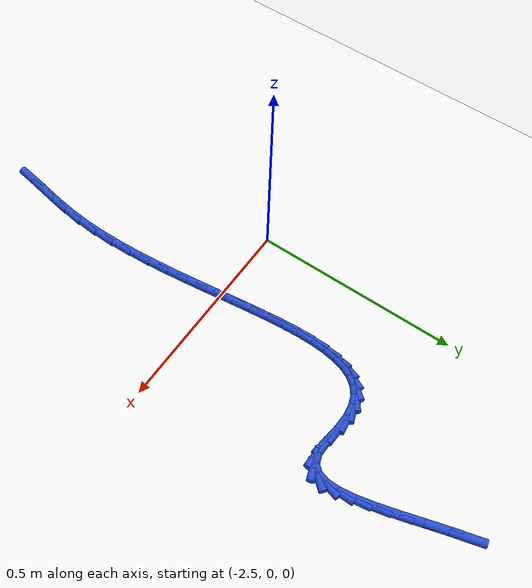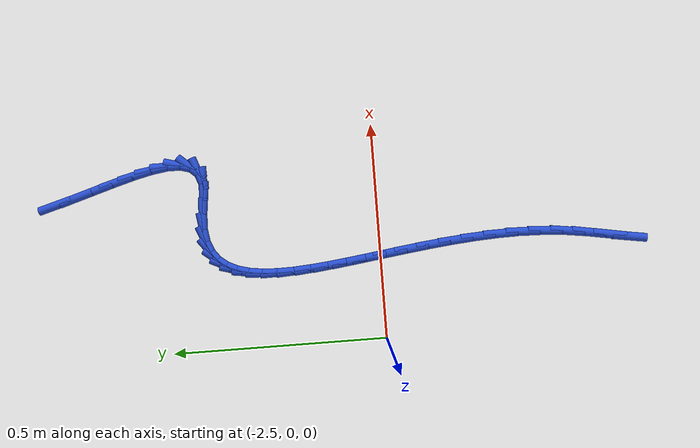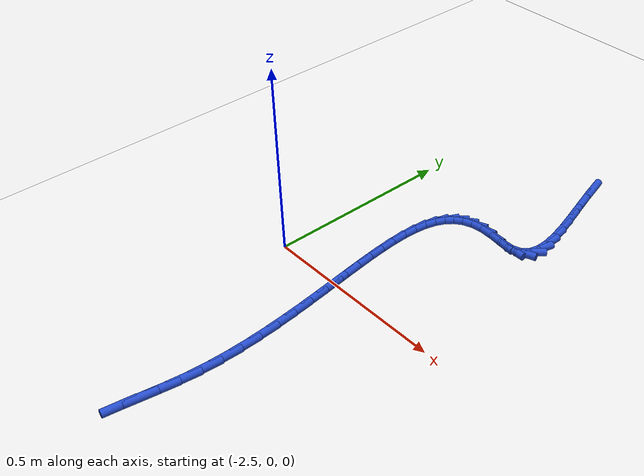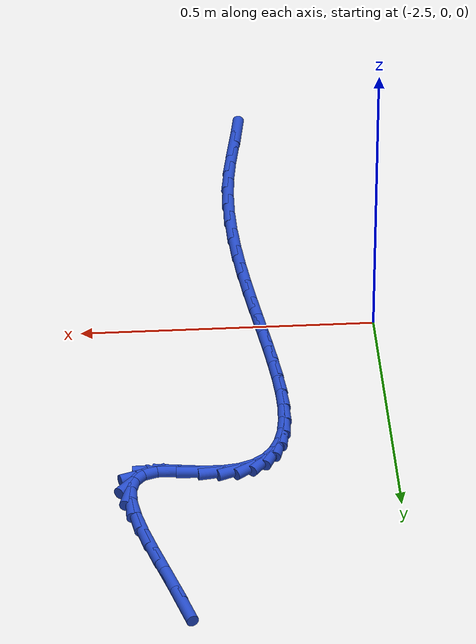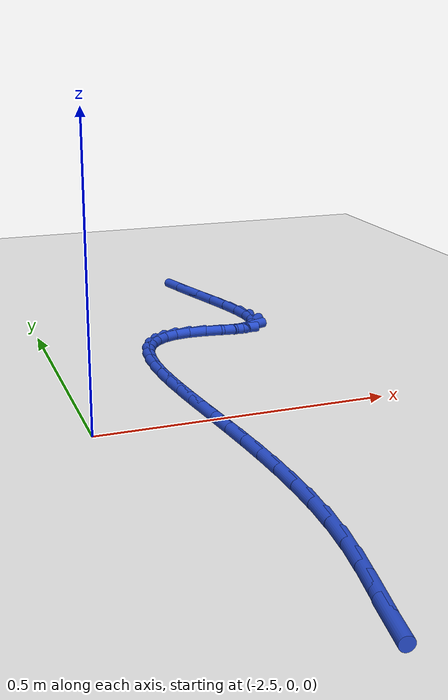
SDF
<sdf version="1.6">
 <world name="default">
  <model name="ground_plane">
   <static>1</static>
   <link name="link">
    <collision name="collision">
     <geometry><plane><normal>0 0 1</normal><size>100 100</size></plane></geometry>
     <surface><friction><ode><mu>100</mu><mu2>50</mu2></ode></friction></surface>
    </collision>
    <visual name="visual">
     <cast_shadows>0</cast_shadows>
     <geometry><plane><normal>0 0 1</normal><size>100 100</size></plane></geometry>
     <material>
      <script><uri>file://media/materials/scripts/gazebo.material</uri><name>Gazebo/WhiteGlow</name></script>
     </material>
    </visual>
   </link>
  </model>
  <model name="line">
   <link name="link_96">
    <pose>-2.1310948511905163 0.7471759445319182 0.01 0 1.57 -1.297716584570701</pose>
    <collision name="collision">
     <geometry><cylinder><radius>0.01</radius><length>0.08</length></cylinder></geometry>
    </collision>
    <visual name="visual">
     <material>
      <script><name>Gazebo/Blue</name><uri>file://media/materials/scripts/gazebo.material</uri></script>
     </material>
     <geometry><cylinder><radius>0.01</radius><length>0.08</length></cylinder></geometry>
    </visual>
   </link>
   <link name="link_97">
    <pose>-2.1171424516306065 0.6973595762409653 0.01 0 1.57 -1.280809711748356</pose>
    <collision name="collision">
     <geometry><cylinder><radius>0.01</radius><length>0.08</length></cylinder></geometry>
    </collision>
    <visual name="visual">
     <material>
      <script><name>Gazebo/Blue</name><uri>file://media/materials/scripts/gazebo.material</uri></script>
     </material>
     <geometry><cylinder><radius>0.01</radius><length>0.08</length></cylinder></geometry>
    </visual>
   </link>
   <link name="link_98">
    <pose>-2.1025384481944487 0.6484182523342042 0.01 0 1.57 -1.2810920917916413</pose>
    <collision name="collision">
     <geometry><cylinder><radius>0.01</radius><length>0.08</length></cylinder></geometry>
    </collision>
    <visual name="visual">
     <material>
      <script><name>Gazebo/Blue</name><uri>file://media/materials/scripts/gazebo.material</uri></script>
     </material>
     <geometry><cylinder><radius>0.01</radius><length>0.08</length></cylinder></geometry>
    </visual>
   </link>
   <link name="link_99">
    <pose>-2.0884894497342206 0.6012883086900848 0.01 0 1.57 -1.3007075484696438</pose>
    <collision name="collision">
     <geometry><cylinder><radius>0.01</radius><length>0.08</length></cylinder></geometry>
    </collision>
    <visual name="visual">
     <material>
      <script><name>Gazebo/Blue</name><uri>file://media/materials/scripts/gazebo.material</uri></script>
     </material>
     <geometry><cylinder><radius>0.01</radius><length>0.08</length></cylinder></geometry>
    </visual>
   </link>
   <link name="link_100">
    <pose>-2.0762020651021 0.5569060811870585 0.01 0 1.57 -1.3456947190603032</pose>
    <collision name="collision">
     <geometry><cylinder><radius>0.01</radius><length>0.08</length></cylinder></geometry>
    </collision>
    <visual name="visual">
     <material>
      <script><name>Gazebo/Blue</name><uri>file://media/materials/scripts/gazebo.material</uri></script>
     </material>
     <geometry><cylinder><radius>0.01</radius><length>0.08</length></cylinder></geometry>
    </visual>
   </link>
   <link name="link_101">
    <pose>-2.0668829031502653 0.5162079057035749 0.01 0 1.57 -1.4291611176297228</pose>
    <collision name="collision">
     <geometry><cylinder><radius>0.01</radius><length>0.08</length></cylinder></geometry>
    </collision>
    <visual name="visual">
     <material>
      <script><name>Gazebo/Blue</name><uri>file://media/materials/scripts/gazebo.material</uri></script>
     </material>
     <geometry><cylinder><radius>0.01</radius><length>0.08</length></cylinder></geometry>
    </visual>
   </link>
   <link name="link_102">
    <pose>-2.061738572730895 0.48013011811808504 0.01 0 1.57 1.563027751072509</pose>
    <collision name="collision">
     <geometry><cylinder><radius>0.01</radius><length>0.08</length></cylinder></geometry>
    </collision>
    <visual name="visual">
     <material>
      <script><name>Gazebo/Blue</name><uri>file://media/materials/scripts/gazebo.material</uri></script>
     </material>
     <geometry><cylinder><radius>0.01</radius><length>0.08</length></cylinder></geometry>
    </visual>
   </link>
   <link name="link_103">
    <pose>-2.0619756826961653 0.44960905430903864 0.01 0 1.57 1.2940358445536673</pose>
    <collision name="collision">
     <geometry><cylinder><radius>0.01</radius><length>0.08</length></cylinder></geometry>
    </collision>
    <visual name="visual">
     <material>
      <script><name>Gazebo/Blue</name><uri>file://media/materials/scripts/gazebo.material</uri></script>
     </material>
     <geometry><cylinder><radius>0.01</radius><length>0.08</length></cylinder></geometry>
    </visual>
   </link>
   <link name="link_104">
    <pose>-2.0688008418982555 0.42558105015488673 0.01 0 1.57 0.84869884482944</pose>
    <collision name="collision">
     <geometry><cylinder><radius>0.01</radius><length>0.08</length></cylinder></geometry>
    </collision>
    <visual name="visual">
     <material>
      <script><name>Gazebo/Blue</name><uri>file://media/materials/scripts/gazebo.material</uri></script>
     </material>
     <geometry><cylinder><radius>0.01</radius><length>0.08</length></cylinder></geometry>
    </visual>
   </link>
   <link name="link_105">
    <pose>-2.083420659189343 0.40898244153407914 0.01 0 1.57 0.3353729748819456</pose>
    <collision name="collision">
     <geometry><cylinder><radius>0.01</radius><length>0.08</length></cylinder></geometry>
    </collision>
    <visual name="visual">
     <material>
      <script><name>Gazebo/Blue</name><uri>file://media/materials/scripts/gazebo.material</uri></script>
     </material>
     <geometry><cylinder><radius>0.01</radius><length>0.08</length></cylinder></geometry>
    </visual>
   </link>
   <link name="link_106">
    <pose>-2.107041743421606 0.4007495643250668 0.01 0 1.57 -0.019506819088987836</pose>
    <collision name="collision">
     <geometry><cylinder><radius>0.01</radius><length>0.08</length></cylinder></geometry>
    </collision>
    <visual name="visual">
     <material>
      <script><name>Gazebo/Blue</name><uri>file://media/materials/scripts/gazebo.material</uri></script>
     </material>
     <geometry><cylinder><radius>0.01</radius><length>0.08</length></cylinder></geometry>
    </visual>
   </link>
   <link name="link_107">
    <pose>-2.1404162920764804 0.4014006781963625 0.01 0 1.57 -0.12524596289512585</pose>
    <collision name="collision">
     <geometry><cylinder><radius>0.01</radius><length>0.08</length></cylinder></geometry>
    </collision>
    <visual name="visual">
     <material>
      <script><name>Gazebo/Blue</name><uri>file://media/materials/scripts/gazebo.material</uri></script>
     </material>
     <geometry><cylinder><radius>0.01</radius><length>0.08</length></cylinder></geometry>
    </visual>
   </link>
   <link name="link_108">
    <pose>-2.178593904930138 0.4062074301898663 0.01 0 1.57 -0.039777618561270774</pose>
    <collision name="collision">
     <geometry><cylinder><radius>0.01</radius><length>0.08</length></cylinder></geometry>
    </collision>
    <visual name="visual">
     <material>
      <script><name>Gazebo/Blue</name><uri>file://media/materials/scripts/gazebo.material</uri></script>
     </material>
     <geometry><cylinder><radius>0.01</radius><length>0.08</length></cylinder></geometry>
    </visual>
   </link>
   <link name="link_109">
    <pose>-2.2135223428460704 0.4075975335153804 0.01 0 1.57 0.14183063942591403</pose>
    <collision name="collision">
     <geometry><cylinder><radius>0.01</radius><length>0.08</length></cylinder></geometry>
    </collision>
    <visual name="visual">
     <material>
      <script><name>Gazebo/Blue</name><uri>file://media/materials/scripts/gazebo.material</uri></script>
     </material>
     <geometry><cylinder><radius>0.01</radius><length>0.08</length></cylinder></geometry>
    </visual>
   </link>
   <link name="link_110">
    <pose>-2.2429372766135875 0.4033973935685279 0.01 0 1.57 0.3727917087202935</pose>
    <collision name="collision">
     <geometry><cylinder><radius>0.01</radius><length>0.08</length></cylinder></geometry>
    </collision>
    <visual name="visual">
     <material>
      <script><name>Gazebo/Blue</name><uri>file://media/materials/scripts/gazebo.material</uri></script>
     </material>
     <geometry><cylinder><radius>0.01</radius><length>0.08</length></cylinder></geometry>
    </visual>
   </link>
   <link name="link_111">
    <pose>-2.267220186590021 0.3939008734753273 0.01 0 1.57 0.6378486266825598</pose>
    <collision name="collision">
     <geometry><cylinder><radius>0.01</radius><length>0.08</length></cylinder></geometry>
    </collision>
    <visual name="visual">
     <material>
      <script><name>Gazebo/Blue</name><uri>file://media/materials/scripts/gazebo.material</uri></script>
     </material>
     <geometry><cylinder><radius>0.01</radius><length>0.08</length></cylinder></geometry>
    </visual>
   </link>
   <link name="link_112">
    <pose>-2.286765425495413 0.37941384100917064 0.01 0 1.57 0.9003773241310117</pose>
    <collision name="collision">
     <geometry><cylinder><radius>0.01</radius><length>0.08</length></cylinder></geometry>
    </collision>
    <visual name="visual">
     <material>
      <script><name>Gazebo/Blue</name><uri>file://media/materials/scripts/gazebo.material</uri></script>
     </material>
     <geometry><cylinder><radius>0.01</radius><length>0.08</length></cylinder></geometry>
    </visual>
   </link>
   <link name="link_113">
    <pose>-2.301967346049807 0.36024216394345043 0.01 0 1.57 1.1250469760258766</pose>
    <collision name="collision">
     <geometry><cylinder><radius>0.01</radius><length>0.08</length></cylinder></geometry>
    </collision>
    <visual name="visual">
     <material>
      <script><name>Gazebo/Blue</name><uri>file://media/materials/scripts/gazebo.material</uri></script>
     </material>
     <geometry><cylinder><radius>0.01</radius><length>0.08</length></cylinder></geometry>
    </visual>
   </link>
   <link name="link_114">
    <pose>-2.3132203009732457 0.3366917100515587 0.01 0 1.57 1.2990032359611599</pose>
    <collision name="collision">
     <geometry><cylinder><radius>0.01</radius><length>0.08</length></cylinder></geometry>
    </collision>
    <visual name="visual">
     <material>
      <script><name>Gazebo/Blue</name><uri>file://media/materials/scripts/gazebo.material</uri></script>
     </material>
     <geometry><cylinder><radius>0.01</radius><length>0.08</length></cylinder></geometry>
    </visual>
   </link>
   <link name="link_115">
    <pose>-2.320918642985773 0.309068347106888 0.01 0 1.57 1.4272219785441602</pose>
    <collision name="collision">
     <geometry><cylinder><radius>0.01</radius><length>0.08</length></cylinder></geometry>
    </collision>
    <visual name="visual">
     <material>
      <script><name>Gazebo/Blue</name><uri>file://media/materials/scripts/gazebo.material</uri></script>
     </material>
     <geometry><cylinder><radius>0.01</radius><length>0.08</length></cylinder></geometry>
    </visual>
   </link>
   <link name="link_116">
    <pose>-2.3254567248074305 0.2776779428828305 0.01 0 1.57 1.5199908990373294</pose>
    <collision name="collision">
     <geometry><cylinder><radius>0.01</radius><length>0.08</length></cylinder></geometry>
    </collision>
    <visual name="visual">
     <material>
      <script><name>Gazebo/Blue</name><uri>file://media/materials/scripts/gazebo.material</uri></script>
     </material>
     <geometry><cylinder><radius>0.01</radius><length>0.08</length></cylinder></geometry>
    </visual>
   </link>
   <link name="link_117">
    <pose>-2.327228899158263 0.24282636515277778 0.01 0 1.57 -1.5550273222467899</pose>
    <collision name="collision">
     <geometry><cylinder><radius>0.01</radius><length>0.08</length></cylinder></geometry>
    </collision>
    <visual name="visual">
     <material>
      <script><name>Gazebo/Blue</name><uri>file://media/materials/scripts/gazebo.material</uri></script>
     </material>
     <geometry><cylinder><radius>0.01</radius><length>0.08</length></cylinder></geometry>
    </visual>
   </link>
   <link name="link_118">
    <pose>-2.3266295187583133 0.20481948169012354 0.01 0 1.57 -1.5078152587546334</pose>
    <collision name="collision">
     <geometry><cylinder><radius>0.01</radius><length>0.08</length></cylinder></geometry>
    </collision>
    <visual name="visual">
     <material>
      <script><name>Gazebo/Blue</name><uri>file://media/materials/scripts/gazebo.material</uri></script>
     </material>
     <geometry><cylinder><radius>0.01</radius><length>0.08</length></cylinder></geometry>
    </visual>
   </link>
   <link name="link_119">
    <pose>-2.324052936327624 0.16396316026825933 0.01 0 1.57 -1.4752484767091651</pose>
    <collision name="collision">
     <geometry><cylinder><radius>0.01</radius><length>0.08</length></cylinder></geometry>
    </collision>
    <visual name="visual">
     <material>
      <script><name>Gazebo/Blue</name><uri>file://media/materials/scripts/gazebo.material</uri></script>
     </material>
     <geometry><cylinder><radius>0.01</radius><length>0.08</length></cylinder></geometry>
    </visual>
   </link>
   <link name="link_120">
    <pose>-2.3198935045862377 0.12056326866057751 0.01 0 1.57 -1.4541458026389997</pose>
    <collision name="collision">
     <geometry><cylinder><radius>0.01</radius><length>0.08</length></cylinder></geometry>
    </collision>
    <visual name="visual">
     <material>
      <script><name>Gazebo/Blue</name><uri>file://media/materials/scripts/gazebo.material</uri></script>
     </material>
     <geometry><cylinder><radius>0.01</radius><length>0.08</length></cylinder></geometry>
    </visual>
   </link>
   <link name="link_121">
    <pose>-2.3145455762541984 0.07492567464047037 0.01 0 1.57 -1.4423887061603862</pose>
    <collision name="collision">
     <geometry><cylinder><radius>0.01</radius><length>0.08</length></cylinder></geometry>
    </collision>
    <visual name="visual">
     <material>
      <script><name>Gazebo/Blue</name><uri>file://media/materials/scripts/gazebo.material</uri></script>
     </material>
     <geometry><cylinder><radius>0.01</radius><length>0.08</length></cylinder></geometry>
    </visual>
   </link>
   <link name="link_122">
    <pose>-2.3084035040515483 0.027356245981328853 0.01 0 1.57 -1.4385947753371133</pose>
    <collision name="collision">
     <geometry><cylinder><radius>0.01</radius><length>0.08</length></cylinder></geometry>
    </collision>
    <visual name="visual">
     <material>
      <script><name>Gazebo/Blue</name><uri>file://media/materials/scripts/gazebo.material</uri></script>
     </material>
     <geometry><cylinder><radius>0.01</radius><length>0.08</length></cylinder></geometry>
    </visual>
   </link>
   <link name="link_123">
    <pose>-2.3018616406983314 -0.02183914954345227 0.01 0 1.57 -1.4419050837641876</pose>
    <collision name="collision">
     <geometry><cylinder><radius>0.01</radius><length>0.08</length></cylinder></geometry>
    </collision>
    <visual name="visual">
     <material>
      <script><name>Gazebo/Blue</name><uri>file://media/materials/scripts/gazebo.material</uri></script>
     </material>
     <geometry><cylinder><radius>0.01</radius><length>0.08</length></cylinder></geometry>
    </visual>
   </link>
   <link name="link_124">
    <pose>-2.295314338914591 -0.07235464416048193 0.01 0 1.57 -1.4518491345964395</pose>
    <collision name="collision">
     <geometry><cylinder><radius>0.01</radius><length>0.08</length></cylinder></geometry>
    </collision>
    <visual name="visual">
     <material>
      <script><name>Gazebo/Blue</name><uri>file://media/materials/scripts/gazebo.material</uri></script>
     </material>
     <geometry><cylinder><radius>0.01</radius><length>0.08</length></cylinder></geometry>
    </visual>
   </link>
   <link name="link_125">
    <pose>-2.2891559514203688 -0.1238843700963678 0.01 0 1.57 -1.4682606085092769</pose>
    <collision name="collision">
     <geometry><cylinder><radius>0.01</radius><length>0.08</length></cylinder></geometry>
    </collision>
    <visual name="visual">
     <material>
      <script><name>Gazebo/Blue</name><uri>file://media/materials/scripts/gazebo.material</uri></script>
     </material>
     <geometry><cylinder><radius>0.01</radius><length>0.08</length></cylinder></geometry>
    </visual>
   </link>
   <link name="link_126">
    <pose>-2.2837808309357084 -0.17612245957771905 0.01 0 1.57 -1.4912258164098333</pose>
    <collision name="collision">
     <geometry><cylinder><radius>0.01</radius><length>0.08</length></cylinder></geometry>
    </collision>
    <visual name="visual">
     <material>
      <script><name>Gazebo/Blue</name><uri>file://media/materials/scripts/gazebo.material</uri></script>
     </material>
     <geometry><cylinder><radius>0.01</radius><length>0.08</length></cylinder></geometry>
    </visual>
   </link>
   <link name="link_127">
    <pose>-2.279583330180655 -0.22876304483114066 0.01 0 1.57 -1.521052281002292</pose>
    <collision name="collision">
     <geometry><cylinder><radius>0.01</radius><length>0.08</length></cylinder></geometry>
    </collision>
    <visual name="visual">
     <material>
      <script><name>Gazebo/Blue</name><uri>file://media/materials/scripts/gazebo.material</uri></script>
     </material>
     <geometry><cylinder><radius>0.01</radius><length>0.08</length></cylinder></geometry>
    </visual>
   </link>
   <link name="link_128">
    <pose>-2.276957801875248 -0.28150025808324153 0.01 0 1.57 -1.5582474221058271</pose>
    <collision name="collision">
     <geometry><cylinder><radius>0.01</radius><length>0.08</length></cylinder></geometry>
    </collision>
    <visual name="visual">
     <material>
      <script><name>Gazebo/Blue</name><uri>file://media/materials/scripts/gazebo.material</uri></script>
     </material>
     <geometry><cylinder><radius>0.01</radius><length>0.08</length></cylinder></geometry>
    </visual>
   </link>
   <link name="link_129">
    <pose>-2.2762985987395337 -0.33402823156062966 0.01 0 1.57 1.5380954134753753</pose>
    <collision name="collision">
     <geometry><cylinder><radius>0.01</radius><length>0.08</length></cylinder></geometry>
    </collision>
    <visual name="visual">
     <material>
      <script><name>Gazebo/Blue</name><uri>file://media/materials/scripts/gazebo.material</uri></script>
     </material>
     <geometry><cylinder><radius>0.01</radius><length>0.08</length></cylinder></geometry>
    </visual>
   </link>
   <link name="link_130">
    <pose>-2.278000073493552 -0.3860410974899124 0.01 0 1.57 1.4839965596549056</pose>
    <collision name="collision">
     <geometry><cylinder><radius>0.01</radius><length>0.08</length></cylinder></geometry>
    </collision>
    <visual name="visual">
     <material>
      <script><name>Gazebo/Blue</name><uri>file://media/materials/scripts/gazebo.material</uri></script>
     </material>
     <geometry><cylinder><radius>0.01</radius><length>0.08</length></cylinder></geometry>
    </visual>
   </link>
   <link name="link_131">
    <pose>-2.282454687542363 -0.437232722247986 0.01 0 1.57 1.4297061158082145</pose>
    <collision name="collision">
     <geometry><cylinder><radius>0.01</radius><length>0.08</length></cylinder></geometry>
    </collision>
    <visual name="visual">
     <material>
      <script><name>Gazebo/Blue</name><uri>file://media/materials/scripts/gazebo.material</uri></script>
     </material>
     <geometry><cylinder><radius>0.01</radius><length>0.08</length></cylinder></geometry>
    </visual>
   </link>
   <link name="link_132">
    <pose>-2.289555539947604 -0.48722678013022996 0.01 0 1.57 1.396977430654262</pose>
    <collision name="collision">
     <geometry><cylinder><radius>0.01</radius><length>0.08</length></cylinder></geometry>
    </collision>
    <visual name="visual">
     <material>
      <script><name>Gazebo/Blue</name><uri>file://media/materials/scripts/gazebo.material</uri></script>
     </material>
     <geometry><cylinder><radius>0.01</radius><length>0.08</length></cylinder></geometry>
    </visual>
   </link>
   <link name="link_133">
    <pose>-2.2980288778162548 -0.5354829287243316 0.01 0 1.57 1.3898831453050418</pose>
    <collision name="collision">
     <geometry><cylinder><radius>0.01</radius><length>0.08</length></cylinder></geometry>
    </collision>
    <visual name="visual">
     <material>
      <script><name>Gazebo/Blue</name><uri>file://media/materials/scripts/gazebo.material</uri></script>
     </material>
     <geometry><cylinder><radius>0.01</radius><length>0.08</length></cylinder></geometry>
    </visual>
   </link>
   <link name="link_134">
    <pose>-2.306434559732417 -0.5814374374772519 0.01 0 1.57 1.4120590962701236</pose>
    <collision name="collision">
     <geometry><cylinder><radius>0.01</radius><length>0.08</length></cylinder></geometry>
    </collision>
    <visual name="visual">
     <material>
      <script><name>Gazebo/Blue</name><uri>file://media/materials/scripts/gazebo.material</uri></script>
     </material>
     <geometry><cylinder><radius>0.01</radius><length>0.08</length></cylinder></geometry>
    </visual>
   </link>
  </model>
 </world>
</sdf>
